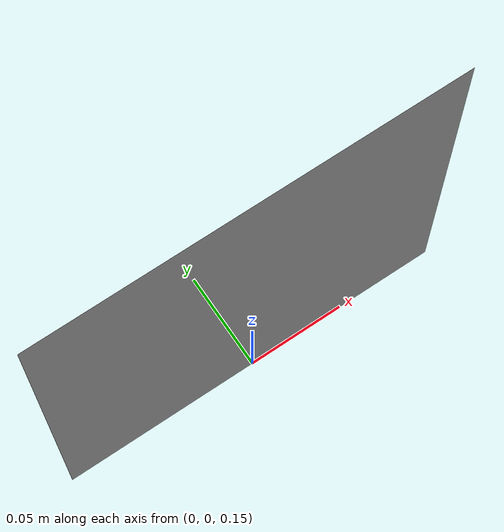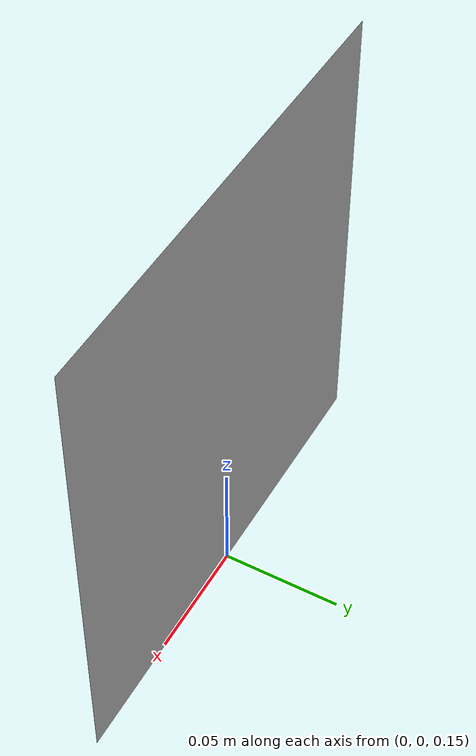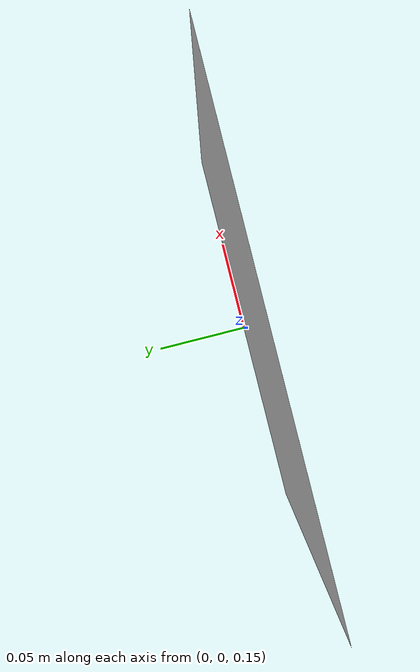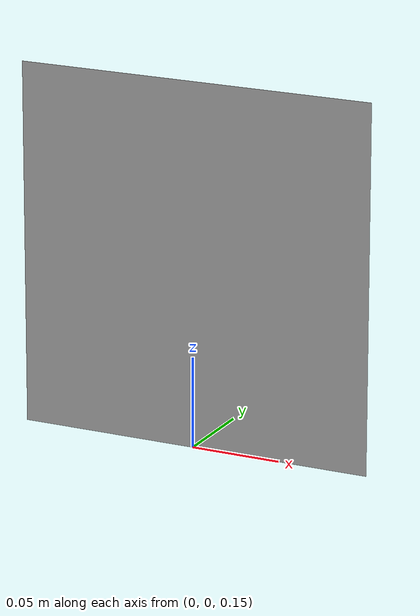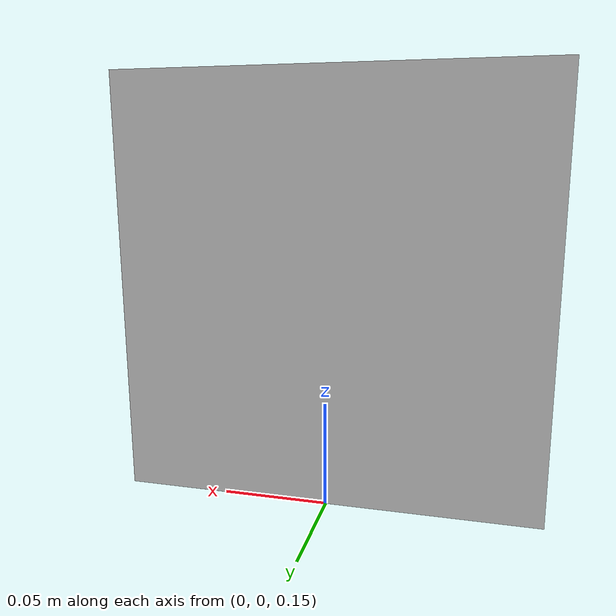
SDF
<?xml version="1.0" ?>
<sdf version="1.5">
  <model name="Plano15">
    <link name="link">
      <gravity>0</gravity>
      <pose>0 0 0.25 0 0 0</pose>
      <inertial>
        <mass>0.000001</mass>
        <inertia>
          <ixx>0.00058</ixx>
          <ixy>0</ixy>
          <ixz>0</ixz>
          <iyy>0.00058</iyy>
          <iyz>0</iyz>
          <izz>0.00019</izz>
        </inertia>
      </inertial>
      <collision name="collision">
        <geometry>
          <box>
            <size>0.2 0.000001 0.2</size>
          </box>
        </geometry>
      </collision>
      <visual name="visual">
        <geometry>
          <box>
            <size>0.2 0.000001 0.2</size>
          </box>
        </geometry>
        <material>
          <script>
            <uri>model://Plano15/materials/scripts</uri>
            <uri>model://Plano15/materials/textures</uri>
            <name>Plano15/Diffuse</name>
          </script>
        </material>
      </visual>
    </link>
  </model>
</sdf>
